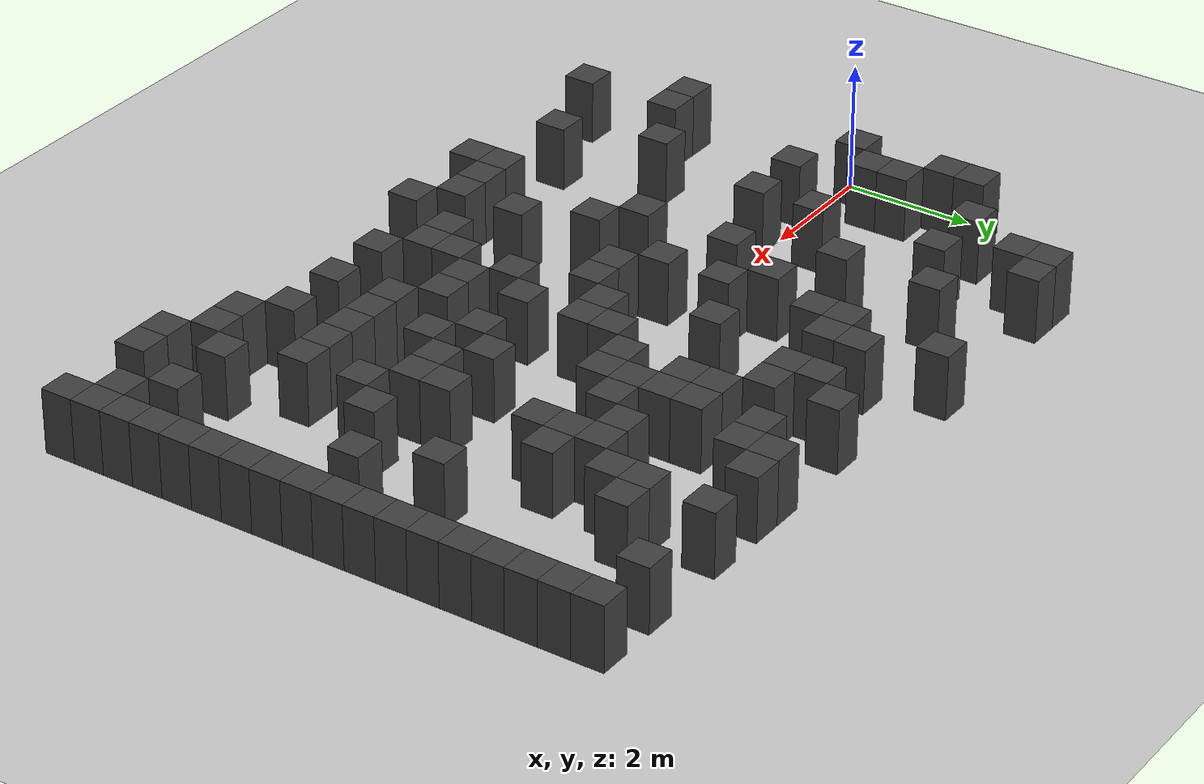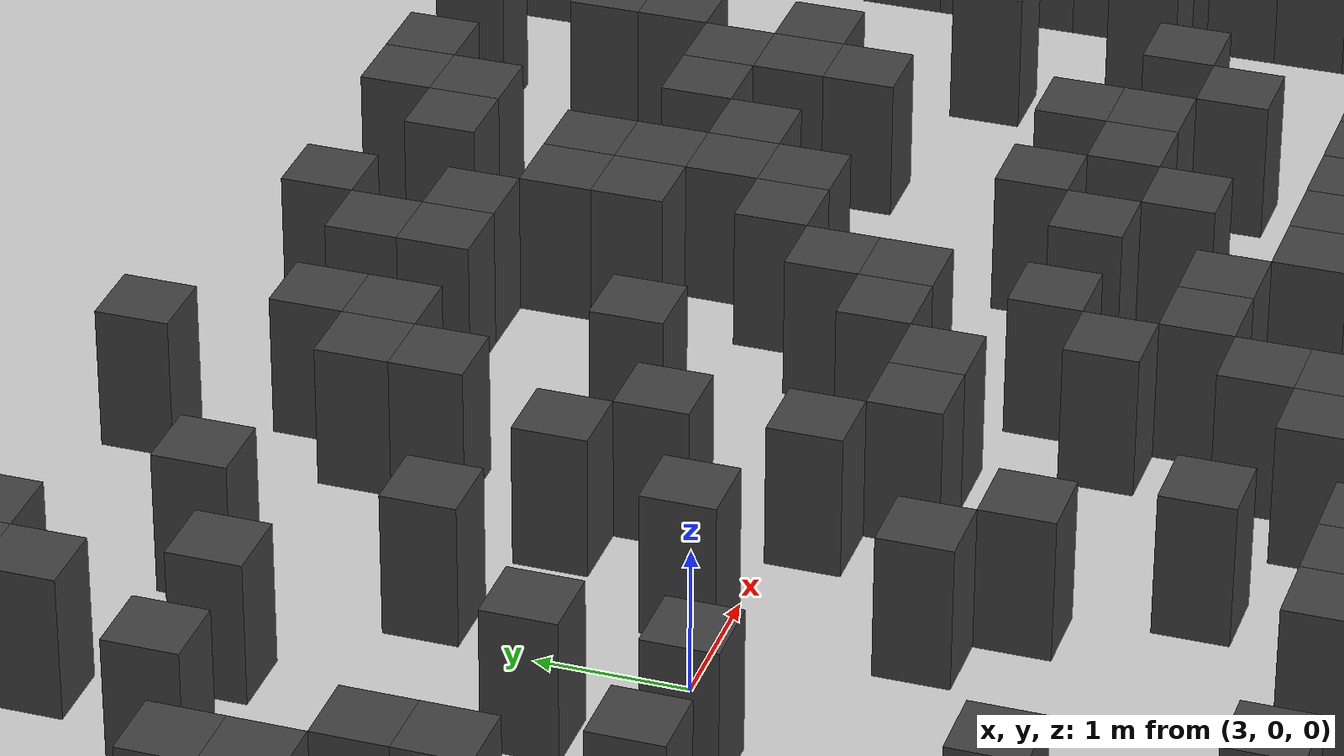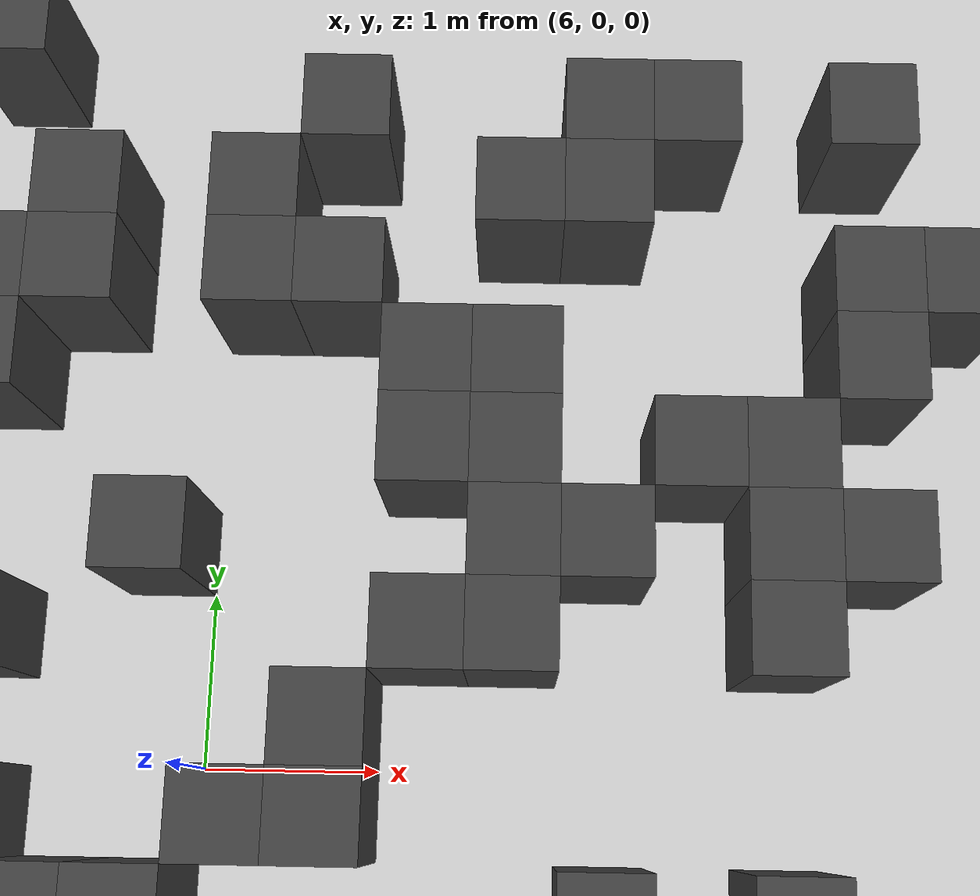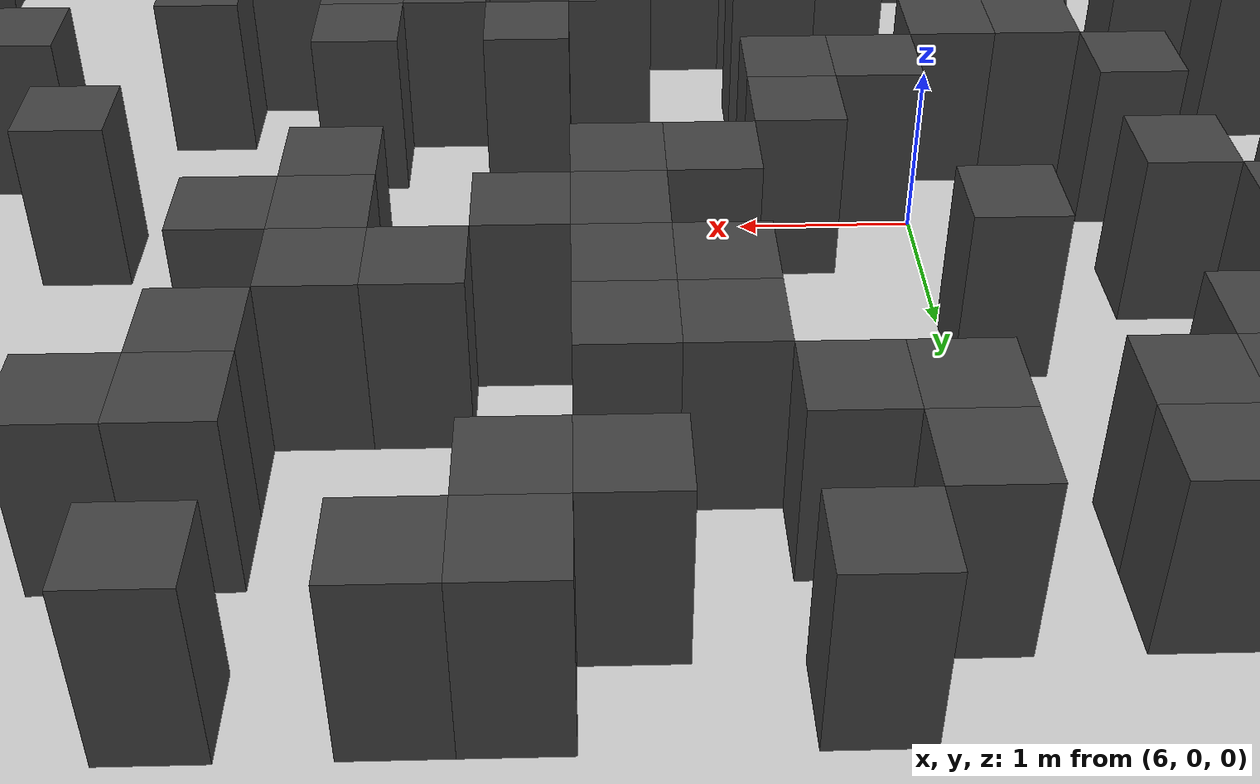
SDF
<sdf version="1.7">
 <world name="map_4682">
  <model name="ground_plane">
   <static>true</static>
   <link name="link">
    <collision name="collision">
     <geometry><plane><normal>0 0 1</normal><size>200 200</size></plane></geometry>
    </collision>
    <visual name="visual">
     <geometry><plane><normal>0 0 1</normal><size>200 200</size></plane></geometry>
     <material><ambient>0.8 0.8 0.8 1</ambient><diffuse>0.8 0.8 0.8 1</diffuse></material>
    </visual>
   </link>
  </model>
  <model name="maze_environment">
   <static>true</static>
   <link name="wall_241">
    <pose>1.750 4.250 0.500 0 0 0</pose>
    <collision name="col"><geometry><box><size>0.5 0.5 1.0</size></box></geometry></collision>
    <visual name="vis">
     <geometry><box><size>0.5 0.5 1.0</size></box></geometry>
     <material><ambient>0.15 0.15 0.15 1</ambient><diffuse>0.25 0.25 0.25 1</diffuse></material>
    </visual>
   </link>
   <link name="wall_242">
    <pose>2.250 4.250 0.500 0 0 0</pose>
    <collision name="col"><geometry><box><size>0.5 0.5 1.0</size></box></geometry></collision>
    <visual name="vis">
     <geometry><box><size>0.5 0.5 1.0</size></box></geometry>
     <material><ambient>0.15 0.15 0.15 1</ambient><diffuse>0.25 0.25 0.25 1</diffuse></material>
    </visual>
   </link>
   <link name="wall_243">
    <pose>4.750 4.250 0.500 0 0 0</pose>
    <collision name="col"><geometry><box><size>0.5 0.5 1.0</size></box></geometry></collision>
    <visual name="vis">
     <geometry><box><size>0.5 0.5 1.0</size></box></geometry>
     <material><ambient>0.15 0.15 0.15 1</ambient><diffuse>0.25 0.25 0.25 1</diffuse></material>
    </visual>
   </link>
   <link name="wall_257">
    <pose>1.750 3.750 0.500 0 0 0</pose>
    <collision name="col"><geometry><box><size>0.5 0.5 1.0</size></box></geometry></collision>
    <visual name="vis">
     <geometry><box><size>0.5 0.5 1.0</size></box></geometry>
     <material><ambient>0.15 0.15 0.15 1</ambient><diffuse>0.25 0.25 0.25 1</diffuse></material>
    </visual>
   </link>
   <link name="wall_258">
    <pose>6.750 3.750 0.500 0 0 0</pose>
    <collision name="col"><geometry><box><size>0.5 0.5 1.0</size></box></geometry></collision>
    <visual name="vis">
     <geometry><box><size>0.5 0.5 1.0</size></box></geometry>
     <material><ambient>0.15 0.15 0.15 1</ambient><diffuse>0.25 0.25 0.25 1</diffuse></material>
    </visual>
   </link>
   <link name="wall_259">
    <pose>8.250 3.750 0.500 0 0 0</pose>
    <collision name="col"><geometry><box><size>0.5 0.5 1.0</size></box></geometry></collision>
    <visual name="vis">
     <geometry><box><size>0.5 0.5 1.0</size></box></geometry>
     <material><ambient>0.15 0.15 0.15 1</ambient><diffuse>0.25 0.25 0.25 1</diffuse></material>
    </visual>
   </link>
   <link name="wall_260">
    <pose>8.750 3.750 0.500 0 0 0</pose>
    <collision name="col"><geometry><box><size>0.5 0.5 1.0</size></box></geometry></collision>
    <visual name="vis">
     <geometry><box><size>0.5 0.5 1.0</size></box></geometry>
     <material><ambient>0.15 0.15 0.15 1</ambient><diffuse>0.25 0.25 0.25 1</diffuse></material>
    </visual>
   </link>
   <link name="wall_261">
    <pose>9.750 3.750 0.500 0 0 0</pose>
    <collision name="col"><geometry><box><size>0.5 0.5 1.0</size></box></geometry></collision>
    <visual name="vis">
     <geometry><box><size>0.5 0.5 1.0</size></box></geometry>
     <material><ambient>0.15 0.15 0.15 1</ambient><diffuse>0.25 0.25 0.25 1</diffuse></material>
    </visual>
   </link>
   <link name="wall_262">
    <pose>11.250 3.750 0.500 0 0 0</pose>
    <collision name="col"><geometry><box><size>0.5 0.5 1.0</size></box></geometry></collision>
    <visual name="vis">
     <geometry><box><size>0.5 0.5 1.0</size></box></geometry>
     <material><ambient>0.15 0.15 0.15 1</ambient><diffuse>0.25 0.25 0.25 1</diffuse></material>
    </visual>
   </link>
   <link name="wall_263">
    <pose>12.250 3.750 0.500 0 0 0</pose>
    <collision name="col"><geometry><box><size>0.5 0.5 1.0</size></box></geometry></collision>
    <visual name="vis">
     <geometry><box><size>0.5 0.5 1.0</size></box></geometry>
     <material><ambient>0.15 0.15 0.15 1</ambient><diffuse>0.25 0.25 0.25 1</diffuse></material>
    </visual>
   </link>
   <link name="wall_273">
    <pose>3.250 3.250 0.500 0 0 0</pose>
    <collision name="col"><geometry><box><size>0.5 0.5 1.0</size></box></geometry></collision>
    <visual name="vis">
     <geometry><box><size>0.5 0.5 1.0</size></box></geometry>
     <material><ambient>0.15 0.15 0.15 1</ambient><diffuse>0.25 0.25 0.25 1</diffuse></material>
    </visual>
   </link>
   <link name="wall_274">
    <pose>5.250 3.250 0.500 0 0 0</pose>
    <collision name="col"><geometry><box><size>0.5 0.5 1.0</size></box></geometry></collision>
    <visual name="vis">
     <geometry><box><size>0.5 0.5 1.0</size></box></geometry>
     <material><ambient>0.15 0.15 0.15 1</ambient><diffuse>0.25 0.25 0.25 1</diffuse></material>
    </visual>
   </link>
   <link name="wall_275">
    <pose>6.250 3.250 0.500 0 0 0</pose>
    <collision name="col"><geometry><box><size>0.5 0.5 1.0</size></box></geometry></collision>
    <visual name="vis">
     <geometry><box><size>0.5 0.5 1.0</size></box></geometry>
     <material><ambient>0.15 0.15 0.15 1</ambient><diffuse>0.25 0.25 0.25 1</diffuse></material>
    </visual>
   </link>
   <link name="wall_276">
    <pose>7.750 3.250 0.500 0 0 0</pose>
    <collision name="col"><geometry><box><size>0.5 0.5 1.0</size></box></geometry></collision>
    <visual name="vis">
     <geometry><box><size>0.5 0.5 1.0</size></box></geometry>
     <material><ambient>0.15 0.15 0.15 1</ambient><diffuse>0.25 0.25 0.25 1</diffuse></material>
    </visual>
   </link>
   <link name="wall_277">
    <pose>8.250 3.250 0.500 0 0 0</pose>
    <collision name="col"><geometry><box><size>0.5 0.5 1.0</size></box></geometry></collision>
    <visual name="vis">
     <geometry><box><size>0.5 0.5 1.0</size></box></geometry>
     <material><ambient>0.15 0.15 0.15 1</ambient><diffuse>0.25 0.25 0.25 1</diffuse></material>
    </visual>
   </link>
   <link name="wall_278">
    <pose>12.250 3.250 0.500 0 0 0</pose>
    <collision name="col"><geometry><box><size>0.5 0.5 1.0</size></box></geometry></collision>
    <visual name="vis">
     <geometry><box><size>0.5 0.5 1.0</size></box></geometry>
     <material><ambient>0.15 0.15 0.15 1</ambient><diffuse>0.25 0.25 0.25 1</diffuse></material>
    </visual>
   </link>
   <link name="wall_285">
    <pose>1.250 2.750 0.500 0 0 0</pose>
    <collision name="col"><geometry><box><size>0.5 0.5 1.0</size></box></geometry></collision>
    <visual name="vis">
     <geometry><box><size>0.5 0.5 1.0</size></box></geometry>
     <material><ambient>0.15 0.15 0.15 1</ambient><diffuse>0.25 0.25 0.25 1</diffuse></material>
    </visual>
   </link>
   <link name="wall_286">
    <pose>2.250 2.750 0.500 0 0 0</pose>
    <collision name="col"><geometry><box><size>0.5 0.5 1.0</size></box></geometry></collision>
    <visual name="vis">
     <geometry><box><size>0.5 0.5 1.0</size></box></geometry>
     <material><ambient>0.15 0.15 0.15 1</ambient><diffuse>0.25 0.25 0.25 1</diffuse></material>
    </visual>
   </link>
   <link name="wall_287">
    <pose>4.750 2.750 0.500 0 0 0</pose>
    <collision name="col"><geometry><box><size>0.5 0.5 1.0</size></box></geometry></collision>
    <visual name="vis">
     <geometry><box><size>0.5 0.5 1.0</size></box></geometry>
     <material><ambient>0.15 0.15 0.15 1</ambient><diffuse>0.25 0.25 0.25 1</diffuse></material>
    </visual>
   </link>
   <link name="wall_288">
    <pose>5.250 2.750 0.500 0 0 0</pose>
    <collision name="col"><geometry><box><size>0.5 0.5 1.0</size></box></geometry></collision>
    <visual name="vis">
     <geometry><box><size>0.5 0.5 1.0</size></box></geometry>
     <material><ambient>0.15 0.15 0.15 1</ambient><diffuse>0.25 0.25 0.25 1</diffuse></material>
    </visual>
   </link>
   <link name="wall_289">
    <pose>6.250 2.750 0.500 0 0 0</pose>
    <collision name="col"><geometry><box><size>0.5 0.5 1.0</size></box></geometry></collision>
    <visual name="vis">
     <geometry><box><size>0.5 0.5 1.0</size></box></geometry>
     <material><ambient>0.15 0.15 0.15 1</ambient><diffuse>0.25 0.25 0.25 1</diffuse></material>
    </visual>
   </link>
   <link name="wall_290">
    <pose>6.750 2.750 0.500 0 0 0</pose>
    <collision name="col"><geometry><box><size>0.5 0.5 1.0</size></box></geometry></collision>
    <visual name="vis">
     <geometry><box><size>0.5 0.5 1.0</size></box></geometry>
     <material><ambient>0.15 0.15 0.15 1</ambient><diffuse>0.25 0.25 0.25 1</diffuse></material>
    </visual>
   </link>
   <link name="wall_291">
    <pose>9.750 2.750 0.500 0 0 0</pose>
    <collision name="col"><geometry><box><size>0.5 0.5 1.0</size></box></geometry></collision>
    <visual name="vis">
     <geometry><box><size>0.5 0.5 1.0</size></box></geometry>
     <material><ambient>0.15 0.15 0.15 1</ambient><diffuse>0.25 0.25 0.25 1</diffuse></material>
    </visual>
   </link>
   <link name="wall_292">
    <pose>10.250 2.750 0.500 0 0 0</pose>
    <collision name="col"><geometry><box><size>0.5 0.5 1.0</size></box></geometry></collision>
    <visual name="vis">
     <geometry><box><size>0.5 0.5 1.0</size></box></geometry>
     <material><ambient>0.15 0.15 0.15 1</ambient><diffuse>0.25 0.25 0.25 1</diffuse></material>
    </visual>
   </link>
   <link name="wall_293">
    <pose>12.250 2.750 0.500 0 0 0</pose>
    <collision name="col"><geometry><box><size>0.5 0.5 1.0</size></box></geometry></collision>
    <visual name="vis">
     <geometry><box><size>0.5 0.5 1.0</size></box></geometry>
     <material><ambient>0.15 0.15 0.15 1</ambient><diffuse>0.25 0.25 0.25 1</diffuse></material>
    </visual>
   </link>
   <link name="wall_302">
    <pose>0.250 2.250 0.500 0 0 0</pose>
    <collision name="col"><geometry><box><size>0.5 0.5 1.0</size></box></geometry></collision>
    <visual name="vis">
     <geometry><box><size>0.5 0.5 1.0</size></box></geometry>
     <material><ambient>0.15 0.15 0.15 1</ambient><diffuse>0.25 0.25 0.25 1</diffuse></material>
    </visual>
   </link>
   <link name="wall_303">
    <pose>4.750 2.250 0.500 0 0 0</pose>
    <collision name="col"><geometry><box><size>0.5 0.5 1.0</size></box></geometry></collision>
    <visual name="vis">
     <geometry><box><size>0.5 0.5 1.0</size></box></geometry>
     <material><ambient>0.15 0.15 0.15 1</ambient><diffuse>0.25 0.25 0.25 1</diffuse></material>
    </visual>
   </link>
   <link name="wall_304">
    <pose>7.250 2.250 0.500 0 0 0</pose>
    <collision name="col"><geometry><box><size>0.5 0.5 1.0</size></box></geometry></collision>
    <visual name="vis">
     <geometry><box><size>0.5 0.5 1.0</size></box></geometry>
     <material><ambient>0.15 0.15 0.15 1</ambient><diffuse>0.25 0.25 0.25 1</diffuse></material>
    </visual>
   </link>
   <link name="wall_305">
    <pose>7.750 2.250 0.500 0 0 0</pose>
    <collision name="col"><geometry><box><size>0.5 0.5 1.0</size></box></geometry></collision>
    <visual name="vis">
     <geometry><box><size>0.5 0.5 1.0</size></box></geometry>
     <material><ambient>0.15 0.15 0.15 1</ambient><diffuse>0.25 0.25 0.25 1</diffuse></material>
    </visual>
   </link>
   <link name="wall_306">
    <pose>9.750 2.250 0.500 0 0 0</pose>
    <collision name="col"><geometry><box><size>0.5 0.5 1.0</size></box></geometry></collision>
    <visual name="vis">
     <geometry><box><size>0.5 0.5 1.0</size></box></geometry>
     <material><ambient>0.15 0.15 0.15 1</ambient><diffuse>0.25 0.25 0.25 1</diffuse></material>
    </visual>
   </link>
   <link name="wall_307">
    <pose>12.250 2.250 0.500 0 0 0</pose>
    <collision name="col"><geometry><box><size>0.5 0.5 1.0</size></box></geometry></collision>
    <visual name="vis">
     <geometry><box><size>0.5 0.5 1.0</size></box></geometry>
     <material><ambient>0.15 0.15 0.15 1</ambient><diffuse>0.25 0.25 0.25 1</diffuse></material>
    </visual>
   </link>
   <link name="wall_318">
    <pose>0.250 1.750 0.500 0 0 0</pose>
    <collision name="col"><geometry><box><size>0.5 0.5 1.0</size></box></geometry></collision>
    <visual name="vis">
     <geometry><box><size>0.5 0.5 1.0</size></box></geometry>
     <material><ambient>0.15 0.15 0.15 1</ambient><diffuse>0.25 0.25 0.25 1</diffuse></material>
    </visual>
   </link>
   <link name="wall_319">
    <pose>3.250 1.750 0.500 0 0 0</pose>
    <collision name="col"><geometry><box><size>0.5 0.5 1.0</size></box></geometry></collision>
    <visual name="vis">
     <geometry><box><size>0.5 0.5 1.0</size></box></geometry>
     <material><ambient>0.15 0.15 0.15 1</ambient><diffuse>0.25 0.25 0.25 1</diffuse></material>
    </visual>
   </link>
   <link name="wall_320">
    <pose>7.250 1.750 0.500 0 0 0</pose>
    <collision name="col"><geometry><box><size>0.5 0.5 1.0</size></box></geometry></collision>
    <visual name="vis">
     <geometry><box><size>0.5 0.5 1.0</size></box></geometry>
     <material><ambient>0.15 0.15 0.15 1</ambient><diffuse>0.25 0.25 0.25 1</diffuse></material>
    </visual>
   </link>
   <link name="wall_321">
    <pose>7.750 1.750 0.500 0 0 0</pose>
    <collision name="col"><geometry><box><size>0.5 0.5 1.0</size></box></geometry></collision>
    <visual name="vis">
     <geometry><box><size>0.5 0.5 1.0</size></box></geometry>
     <material><ambient>0.15 0.15 0.15 1</ambient><diffuse>0.25 0.25 0.25 1</diffuse></material>
    </visual>
   </link>
   <link name="wall_322">
    <pose>8.750 1.750 0.500 0 0 0</pose>
    <collision name="col"><geometry><box><size>0.5 0.5 1.0</size></box></geometry></collision>
    <visual name="vis">
     <geometry><box><size>0.5 0.5 1.0</size></box></geometry>
     <material><ambient>0.15 0.15 0.15 1</ambient><diffuse>0.25 0.25 0.25 1</diffuse></material>
    </visual>
   </link>
   <link name="wall_323">
    <pose>9.250 1.750 0.500 0 0 0</pose>
    <collision name="col"><geometry><box><size>0.5 0.5 1.0</size></box></geometry></collision>
    <visual name="vis">
     <geometry><box><size>0.5 0.5 1.0</size></box></geometry>
     <material><ambient>0.15 0.15 0.15 1</ambient><diffuse>0.25 0.25 0.25 1</diffuse></material>
    </visual>
   </link>
   <link name="wall_324">
    <pose>12.250 1.750 0.500 0 0 0</pose>
    <collision name="col"><geometry><box><size>0.5 0.5 1.0</size></box></geometry></collision>
    <visual name="vis">
     <geometry><box><size>0.5 0.5 1.0</size></box></geometry>
     <material><ambient>0.15 0.15 0.15 1</ambient><diffuse>0.25 0.25 0.25 1</diffuse></material>
    </visual>
   </link>
   <link name="wall_330">
    <pose>0.750 1.250 0.500 0 0 0</pose>
    <collision name="col"><geometry><box><size>0.5 0.5 1.0</size></box></geometry></collision>
    <visual name="vis">
     <geometry><box><size>0.5 0.5 1.0</size></box></geometry>
     <material><ambient>0.15 0.15 0.15 1</ambient><diffuse>0.25 0.25 0.25 1</diffuse></material>
    </visual>
   </link>
   <link name="wall_331">
    <pose>4.250 1.250 0.500 0 0 0</pose>
    <collision name="col"><geometry><box><size>0.5 0.5 1.0</size></box></geometry></collision>
    <visual name="vis">
     <geometry><box><size>0.5 0.5 1.0</size></box></geometry>
     <material><ambient>0.15 0.15 0.15 1</ambient><diffuse>0.25 0.25 0.25 1</diffuse></material>
    </visual>
   </link>
   <link name="wall_332">
    <pose>5.750 1.250 0.500 0 0 0</pose>
    <collision name="col"><geometry><box><size>0.5 0.5 1.0</size></box></geometry></collision>
    <visual name="vis">
     <geometry><box><size>0.5 0.5 1.0</size></box></geometry>
     <material><ambient>0.15 0.15 0.15 1</ambient><diffuse>0.25 0.25 0.25 1</diffuse></material>
    </visual>
   </link>
   <link name="wall_333">
    <pose>7.750 1.250 0.500 0 0 0</pose>
    <collision name="col"><geometry><box><size>0.5 0.5 1.0</size></box></geometry></collision>
    <visual name="vis">
     <geometry><box><size>0.5 0.5 1.0</size></box></geometry>
     <material><ambient>0.15 0.15 0.15 1</ambient><diffuse>0.25 0.25 0.25 1</diffuse></material>
    </visual>
   </link>
   <link name="wall_334">
    <pose>8.250 1.250 0.500 0 0 0</pose>
    <collision name="col"><geometry><box><size>0.5 0.5 1.0</size></box></geometry></collision>
    <visual name="vis">
     <geometry><box><size>0.5 0.5 1.0</size></box></geometry>
     <material><ambient>0.15 0.15 0.15 1</ambient><diffuse>0.25 0.25 0.25 1</diffuse></material>
    </visual>
   </link>
   <link name="wall_335">
    <pose>9.250 1.250 0.500 0 0 0</pose>
    <collision name="col"><geometry><box><size>0.5 0.5 1.0</size></box></geometry></collision>
    <visual name="vis">
     <geometry><box><size>0.5 0.5 1.0</size></box></geometry>
     <material><ambient>0.15 0.15 0.15 1</ambient><diffuse>0.25 0.25 0.25 1</diffuse></material>
    </visual>
   </link>
   <link name="wall_336">
    <pose>9.750 1.250 0.500 0 0 0</pose>
    <collision name="col"><geometry><box><size>0.5 0.5 1.0</size></box></geometry></collision>
    <visual name="vis">
     <geometry><box><size>0.5 0.5 1.0</size></box></geometry>
     <material><ambient>0.15 0.15 0.15 1</ambient><diffuse>0.25 0.25 0.25 1</diffuse></material>
    </visual>
   </link>
   <link name="wall_337">
    <pose>12.250 1.250 0.500 0 0 0</pose>
    <collision name="col"><geometry><box><size>0.5 0.5 1.0</size></box></geometry></collision>
    <visual name="vis">
     <geometry><box><size>0.5 0.5 1.0</size></box></geometry>
     <material><ambient>0.15 0.15 0.15 1</ambient><diffuse>0.25 0.25 0.25 1</diffuse></material>
    </visual>
   </link>
   <link name="wall_351">
    <pose>0.750 0.750 0.500 0 0 0</pose>
    <collision name="col"><geometry><box><size>0.5 0.5 1.0</size></box></geometry></collision>
    <visual name="vis">
     <geometry><box><size>0.5 0.5 1.0</size></box></geometry>
     <material><ambient>0.15 0.15 0.15 1</ambient><diffuse>0.25 0.25 0.25 1</diffuse></material>
    </visual>
   </link>
   <link name="wall_352">
    <pose>2.250 0.750 0.500 0 0 0</pose>
    <collision name="col"><geometry><box><size>0.5 0.5 1.0</size></box></geometry></collision>
    <visual name="vis">
     <geometry><box><size>0.5 0.5 1.0</size></box></geometry>
     <material><ambient>0.15 0.15 0.15 1</ambient><diffuse>0.25 0.25 0.25 1</diffuse></material>
    </visual>
   </link>
   <link name="wall_353">
    <pose>4.750 0.750 0.500 0 0 0</pose>
    <collision name="col"><geometry><box><size>0.5 0.5 1.0</size></box></geometry></collision>
    <visual name="vis">
     <geometry><box><size>0.5 0.5 1.0</size></box></geometry>
     <material><ambient>0.15 0.15 0.15 1</ambient><diffuse>0.25 0.25 0.25 1</diffuse></material>
    </visual>
   </link>
   <link name="wall_354">
    <pose>7.250 0.750 0.500 0 0 0</pose>
    <collision name="col"><geometry><box><size>0.5 0.5 1.0</size></box></geometry></collision>
    <visual name="vis">
     <geometry><box><size>0.5 0.5 1.0</size></box></geometry>
     <material><ambient>0.15 0.15 0.15 1</ambient><diffuse>0.25 0.25 0.25 1</diffuse></material>
    </visual>
   </link>
   <link name="wall_355">
    <pose>7.750 0.750 0.500 0 0 0</pose>
    <collision name="col"><geometry><box><size>0.5 0.5 1.0</size></box></geometry></collision>
    <visual name="vis">
     <geometry><box><size>0.5 0.5 1.0</size></box></geometry>
     <material><ambient>0.15 0.15 0.15 1</ambient><diffuse>0.25 0.25 0.25 1</diffuse></material>
    </visual>
   </link>
   <link name="wall_356">
    <pose>9.250 0.750 0.500 0 0 0</pose>
    <collision name="col"><geometry><box><size>0.5 0.5 1.0</size></box></geometry></collision>
    <visual name="vis">
     <geometry><box><size>0.5 0.5 1.0</size></box></geometry>
     <material><ambient>0.15 0.15 0.15 1</ambient><diffuse>0.25 0.25 0.25 1</diffuse></material>
    </visual>
   </link>
   <link name="wall_357">
    <pose>12.250 0.750 0.500 0 0 0</pose>
    <collision name="col"><geometry><box><size>0.5 0.5 1.0</size></box></geometry></collision>
    <visual name="vis">
     <geometry><box><size>0.5 0.5 1.0</size></box></geometry>
     <material><ambient>0.15 0.15 0.15 1</ambient><diffuse>0.25 0.25 0.25 1</diffuse></material>
    </visual>
   </link>
   <link name="wall_364">
    <pose>0.250 0.250 0.500 0 0 0</pose>
    <collision name="col"><geometry><box><size>0.5 0.5 1.0</size></box></geometry></collision>
    <visual name="vis">
     <geometry><box><size>0.5 0.5 1.0</size></box></geometry>
     <material><ambient>0.15 0.15 0.15 1</ambient><diffuse>0.25 0.25 0.25 1</diffuse></material>
    </visual>
   </link>
   <link name="wall_365">
    <pose>3.750 0.250 0.500 0 0 0</pose>
    <collision name="col"><geometry><box><size>0.5 0.5 1.0</size></box></geometry></collision>
    <visual name="vis">
     <geometry><box><size>0.5 0.5 1.0</size></box></geometry>
     <material><ambient>0.15 0.15 0.15 1</ambient><diffuse>0.25 0.25 0.25 1</diffuse></material>
    </visual>
   </link>
   <link name="wall_366">
    <pose>6.750 0.250 0.500 0 0 0</pose>
    <collision name="col"><geometry><box><size>0.5 0.5 1.0</size></box></geometry></collision>
    <visual name="vis">
     <geometry><box><size>0.5 0.5 1.0</size></box></geometry>
     <material><ambient>0.15 0.15 0.15 1</ambient><diffuse>0.25 0.25 0.25 1</diffuse></material>
    </visual>
   </link>
   <link name="wall_367">
    <pose>10.750 0.250 0.500 0 0 0</pose>
    <collision name="col"><geometry><box><size>0.5 0.5 1.0</size></box></geometry></collision>
    <visual name="vis">
     <geometry><box><size>0.5 0.5 1.0</size></box></geometry>
     <material><ambient>0.15 0.15 0.15 1</ambient><diffuse>0.25 0.25 0.25 1</diffuse></material>
    </visual>
   </link>
   <link name="wall_368">
    <pose>12.250 0.250 0.500 0 0 0</pose>
    <collision name="col"><geometry><box><size>0.5 0.5 1.0</size></box></geometry></collision>
    <visual name="vis">
     <geometry><box><size>0.5 0.5 1.0</size></box></geometry>
     <material><ambient>0.15 0.15 0.15 1</ambient><diffuse>0.25 0.25 0.25 1</diffuse></material>
    </visual>
   </link>
   <link name="wall_373">
    <pose>1.250 -0.250 0.500 0 0 0</pose>
    <collision name="col"><geometry><box><size>0.5 0.5 1.0</size></box></geometry></collision>
    <visual name="vis">
     <geometry><box><size>0.5 0.5 1.0</size></box></geometry>
     <material><ambient>0.15 0.15 0.15 1</ambient><diffuse>0.25 0.25 0.25 1</diffuse></material>
    </visual>
   </link>
   <link name="wall_374">
    <pose>2.250 -0.250 0.500 0 0 0</pose>
    <collision name="col"><geometry><box><size>0.5 0.5 1.0</size></box></geometry></collision>
    <visual name="vis">
     <geometry><box><size>0.5 0.5 1.0</size></box></geometry>
     <material><ambient>0.15 0.15 0.15 1</ambient><diffuse>0.25 0.25 0.25 1</diffuse></material>
    </visual>
   </link>
   <link name="wall_375">
    <pose>4.750 -0.250 0.500 0 0 0</pose>
    <collision name="col"><geometry><box><size>0.5 0.5 1.0</size></box></geometry></collision>
    <visual name="vis">
     <geometry><box><size>0.5 0.5 1.0</size></box></geometry>
     <material><ambient>0.15 0.15 0.15 1</ambient><diffuse>0.25 0.25 0.25 1</diffuse></material>
    </visual>
   </link>
   <link name="wall_376">
    <pose>6.250 -0.250 0.500 0 0 0</pose>
    <collision name="col"><geometry><box><size>0.5 0.5 1.0</size></box></geometry></collision>
    <visual name="vis">
     <geometry><box><size>0.5 0.5 1.0</size></box></geometry>
     <material><ambient>0.15 0.15 0.15 1</ambient><diffuse>0.25 0.25 0.25 1</diffuse></material>
    </visual>
   </link>
   <link name="wall_377">
    <pose>6.750 -0.250 0.500 0 0 0</pose>
    <collision name="col"><geometry><box><size>0.5 0.5 1.0</size></box></geometry></collision>
    <visual name="vis">
     <geometry><box><size>0.5 0.5 1.0</size></box></geometry>
     <material><ambient>0.15 0.15 0.15 1</ambient><diffuse>0.25 0.25 0.25 1</diffuse></material>
    </visual>
   </link>
   <link name="wall_378">
    <pose>12.250 -0.250 0.500 0 0 0</pose>
    <collision name="col"><geometry><box><size>0.5 0.5 1.0</size></box></geometry></collision>
    <visual name="vis">
     <geometry><box><size>0.5 0.5 1.0</size></box></geometry>
     <material><ambient>0.15 0.15 0.15 1</ambient><diffuse>0.25 0.25 0.25 1</diffuse></material>
    </visual>
   </link>
   <link name="wall_382">
    <pose>5.250 -0.750 0.500 0 0 0</pose>
    <collision name="col"><geometry><box><size>0.5 0.5 1.0</size></box></geometry></collision>
    <visual name="vis">
     <geometry><box><size>0.5 0.5 1.0</size></box></geometry>
     <material><ambient>0.15 0.15 0.15 1</ambient><diffuse>0.25 0.25 0.25 1</diffuse></material>
    </visual>
   </link>
   <link name="wall_383">
    <pose>5.750 -0.750 0.500 0 0 0</pose>
    <collision name="col"><geometry><box><size>0.5 0.5 1.0</size></box></geometry></collision>
    <visual name="vis">
     <geometry><box><size>0.5 0.5 1.0</size></box></geometry>
     <material><ambient>0.15 0.15 0.15 1</ambient><diffuse>0.25 0.25 0.25 1</diffuse></material>
    </visual>
   </link>
   <link name="wall_384">
    <pose>8.250 -0.750 0.500 0 0 0</pose>
    <collision name="col"><geometry><box><size>0.5 0.5 1.0</size></box></geometry></collision>
    <visual name="vis">
     <geometry><box><size>0.5 0.5 1.0</size></box></geometry>
     <material><ambient>0.15 0.15 0.15 1</ambient><diffuse>0.25 0.25 0.25 1</diffuse></material>
    </visual>
   </link>
   <link name="wall_385">
    <pose>9.250 -0.750 0.500 0 0 0</pose>
    <collision name="col"><geometry><box><size>0.5 0.5 1.0</size></box></geometry></collision>
    <visual name="vis">
     <geometry><box><size>0.5 0.5 1.0</size></box></geometry>
     <material><ambient>0.15 0.15 0.15 1</ambient><diffuse>0.25 0.25 0.25 1</diffuse></material>
    </visual>
   </link>
   <link name="wall_386">
    <pose>11.250 -0.750 0.500 0 0 0</pose>
    <collision name="col"><geometry><box><size>0.5 0.5 1.0</size></box></geometry></collision>
    <visual name="vis">
     <geometry><box><size>0.5 0.5 1.0</size></box></geometry>
     <material><ambient>0.15 0.15 0.15 1</ambient><diffuse>0.25 0.25 0.25 1</diffuse></material>
    </visual>
   </link>
   <link name="wall_387">
    <pose>12.250 -0.750 0.500 0 0 0</pose>
    <collision name="col"><geometry><box><size>0.5 0.5 1.0</size></box></geometry></collision>
    <visual name="vis">
     <geometry><box><size>0.5 0.5 1.0</size></box></geometry>
     <material><ambient>0.15 0.15 0.15 1</ambient><diffuse>0.25 0.25 0.25 1</diffuse></material>
    </visual>
   </link>
   <link name="wall_394">
    <pose>3.750 -1.250 0.500 0 0 0</pose>
    <collision name="col"><geometry><box><size>0.5 0.5 1.0</size></box></geometry></collision>
    <visual name="vis">
     <geometry><box><size>0.5 0.5 1.0</size></box></geometry>
     <material><ambient>0.15 0.15 0.15 1</ambient><diffuse>0.25 0.25 0.25 1</diffuse></material>
    </visual>
   </link>
   <link name="wall_395">
    <pose>6.750 -1.250 0.500 0 0 0</pose>
    <collision name="col"><geometry><box><size>0.5 0.5 1.0</size></box></geometry></collision>
    <visual name="vis">
     <geometry><box><size>0.5 0.5 1.0</size></box></geometry>
     <material><ambient>0.15 0.15 0.15 1</ambient><diffuse>0.25 0.25 0.25 1</diffuse></material>
    </visual>
   </link>
   <link name="wall_396">
    <pose>7.750 -1.250 0.500 0 0 0</pose>
    <collision name="col"><geometry><box><size>0.5 0.5 1.0</size></box></geometry></collision>
    <visual name="vis">
     <geometry><box><size>0.5 0.5 1.0</size></box></geometry>
     <material><ambient>0.15 0.15 0.15 1</ambient><diffuse>0.25 0.25 0.25 1</diffuse></material>
    </visual>
   </link>
   <link name="wall_397">
    <pose>8.750 -1.250 0.500 0 0 0</pose>
    <collision name="col"><geometry><box><size>0.5 0.5 1.0</size></box></geometry></collision>
    <visual name="vis">
     <geometry><box><size>0.5 0.5 1.0</size></box></geometry>
     <material><ambient>0.15 0.15 0.15 1</ambient><diffuse>0.25 0.25 0.25 1</diffuse></material>
    </visual>
   </link>
   <link name="wall_398">
    <pose>9.250 -1.250 0.500 0 0 0</pose>
    <collision name="col"><geometry><box><size>0.5 0.5 1.0</size></box></geometry></collision>
    <visual name="vis">
     <geometry><box><size>0.5 0.5 1.0</size></box></geometry>
     <material><ambient>0.15 0.15 0.15 1</ambient><diffuse>0.25 0.25 0.25 1</diffuse></material>
    </visual>
   </link>
   <link name="wall_399">
    <pose>10.250 -1.250 0.500 0 0 0</pose>
    <collision name="col"><geometry><box><size>0.5 0.5 1.0</size></box></geometry></collision>
    <visual name="vis">
     <geometry><box><size>0.5 0.5 1.0</size></box></geometry>
     <material><ambient>0.15 0.15 0.15 1</ambient><diffuse>0.25 0.25 0.25 1</diffuse></material>
    </visual>
   </link>
   <link name="wall_400">
    <pose>12.250 -1.250 0.500 0 0 0</pose>
    <collision name="col"><geometry><box><size>0.5 0.5 1.0</size></box></geometry></collision>
    <visual name="vis">
     <geometry><box><size>0.5 0.5 1.0</size></box></geometry>
     <material><ambient>0.15 0.15 0.15 1</ambient><diffuse>0.25 0.25 0.25 1</diffuse></material>
    </visual>
   </link>
   <link name="wall_408">
    <pose>4.250 -1.750 0.500 0 0 0</pose>
    <collision name="col"><geometry><box><size>0.5 0.5 1.0</size></box></geometry></collision>
    <visual name="vis">
     <geometry><box><size>0.5 0.5 1.0</size></box></geometry>
     <material><ambient>0.15 0.15 0.15 1</ambient><diffuse>0.25 0.25 0.25 1</diffuse></material>
    </visual>
   </link>
   <link name="wall_409">
    <pose>6.250 -1.750 0.500 0 0 0</pose>
    <collision name="col"><geometry><box><size>0.5 0.5 1.0</size></box></geometry></collision>
    <visual name="vis">
     <geometry><box><size>0.5 0.5 1.0</size></box></geometry>
     <material><ambient>0.15 0.15 0.15 1</ambient><diffuse>0.25 0.25 0.25 1</diffuse></material>
    </visual>
   </link>
   <link name="wall_410">
    <pose>8.250 -1.750 0.500 0 0 0</pose>
    <collision name="col"><geometry><box><size>0.5 0.5 1.0</size></box></geometry></collision>
    <visual name="vis">
     <geometry><box><size>0.5 0.5 1.0</size></box></geometry>
     <material><ambient>0.15 0.15 0.15 1</ambient><diffuse>0.25 0.25 0.25 1</diffuse></material>
    </visual>
   </link>
   <link name="wall_411">
    <pose>9.750 -1.750 0.500 0 0 0</pose>
    <collision name="col"><geometry><box><size>0.5 0.5 1.0</size></box></geometry></collision>
    <visual name="vis">
     <geometry><box><size>0.5 0.5 1.0</size></box></geometry>
     <material><ambient>0.15 0.15 0.15 1</ambient><diffuse>0.25 0.25 0.25 1</diffuse></material>
    </visual>
   </link>
   <link name="wall_412">
    <pose>12.250 -1.750 0.500 0 0 0</pose>
    <collision name="col"><geometry><box><size>0.5 0.5 1.0</size></box></geometry></collision>
    <visual name="vis">
     <geometry><box><size>0.5 0.5 1.0</size></box></geometry>
     <material><ambient>0.15 0.15 0.15 1</ambient><diffuse>0.25 0.25 0.25 1</diffuse></material>
    </visual>
   </link>
   <link name="wall_416">
    <pose>1.750 -2.250 0.500 0 0 0</pose>
    <collision name="col"><geometry><box><size>0.5 0.5 1.0</size></box></geometry></collision>
    <visual name="vis">
     <geometry><box><size>0.5 0.5 1.0</size></box></geometry>
     <material><ambient>0.15 0.15 0.15 1</ambient><diffuse>0.25 0.25 0.25 1</diffuse></material>
    </visual>
   </link>
   <link name="wall_417">
    <pose>6.750 -2.250 0.500 0 0 0</pose>
    <collision name="col"><geometry><box><size>0.5 0.5 1.0</size></box></geometry></collision>
    <visual name="vis">
     <geometry><box><size>0.5 0.5 1.0</size></box></geometry>
     <material><ambient>0.15 0.15 0.15 1</ambient><diffuse>0.25 0.25 0.25 1</diffuse></material>
    </visual>
   </link>
   <link name="wall_418">
    <pose>7.250 -2.250 0.500 0 0 0</pose>
    <collision name="col"><geometry><box><size>0.5 0.5 1.0</size></box></geometry></collision>
    <visual name="vis">
     <geometry><box><size>0.5 0.5 1.0</size></box></geometry>
     <material><ambient>0.15 0.15 0.15 1</ambient><diffuse>0.25 0.25 0.25 1</diffuse></material>
    </visual>
   </link>
   <link name="wall_419">
    <pose>12.250 -2.250 0.500 0 0 0</pose>
    <collision name="col"><geometry><box><size>0.5 0.5 1.0</size></box></geometry></collision>
    <visual name="vis">
     <geometry><box><size>0.5 0.5 1.0</size></box></geometry>
     <material><ambient>0.15 0.15 0.15 1</ambient><diffuse>0.25 0.25 0.25 1</diffuse></material>
    </visual>
   </link>
   <link name="wall_429">
    <pose>0.250 -2.750 0.500 0 0 0</pose>
    <collision name="col"><geometry><box><size>0.5 0.5 1.0</size></box></geometry></collision>
    <visual name="vis">
     <geometry><box><size>0.5 0.5 1.0</size></box></geometry>
     <material><ambient>0.15 0.15 0.15 1</ambient><diffuse>0.25 0.25 0.25 1</diffuse></material>
    </visual>
   </link>
   <link name="wall_430">
    <pose>0.750 -2.750 0.500 0 0 0</pose>
    <collision name="col"><geometry><box><size>0.5 0.5 1.0</size></box></geometry></collision>
    <visual name="vis">
     <geometry><box><size>0.5 0.5 1.0</size></box></geometry>
     <material><ambient>0.15 0.15 0.15 1</ambient><diffuse>0.25 0.25 0.25 1</diffuse></material>
    </visual>
   </link>
   <link name="wall_431">
    <pose>4.750 -2.750 0.500 0 0 0</pose>
    <collision name="col"><geometry><box><size>0.5 0.5 1.0</size></box></geometry></collision>
    <visual name="vis">
     <geometry><box><size>0.5 0.5 1.0</size></box></geometry>
     <material><ambient>0.15 0.15 0.15 1</ambient><diffuse>0.25 0.25 0.25 1</diffuse></material>
    </visual>
   </link>
   <link name="wall_432">
    <pose>6.250 -2.750 0.500 0 0 0</pose>
    <collision name="col"><geometry><box><size>0.5 0.5 1.0</size></box></geometry></collision>
    <visual name="vis">
     <geometry><box><size>0.5 0.5 1.0</size></box></geometry>
     <material><ambient>0.15 0.15 0.15 1</ambient><diffuse>0.25 0.25 0.25 1</diffuse></material>
    </visual>
   </link>
   <link name="wall_433">
    <pose>7.750 -2.750 0.500 0 0 0</pose>
    <collision name="col"><geometry><box><size>0.5 0.5 1.0</size></box></geometry></collision>
    <visual name="vis">
     <geometry><box><size>0.5 0.5 1.0</size></box></geometry>
     <material><ambient>0.15 0.15 0.15 1</ambient><diffuse>0.25 0.25 0.25 1</diffuse></material>
    </visual>
   </link>
   <link name="wall_434">
    <pose>8.250 -2.750 0.500 0 0 0</pose>
    <collision name="col"><geometry><box><size>0.5 0.5 1.0</size></box></geometry></collision>
    <visual name="vis">
     <geometry><box><size>0.5 0.5 1.0</size></box></geometry>
     <material><ambient>0.15 0.15 0.15 1</ambient><diffuse>0.25 0.25 0.25 1</diffuse></material>
    </visual>
   </link>
   <link name="wall_435">
    <pose>8.750 -2.750 0.500 0 0 0</pose>
    <collision name="col"><geometry><box><size>0.5 0.5 1.0</size></box></geometry></collision>
    <visual name="vis">
     <geometry><box><size>0.5 0.5 1.0</size></box></geometry>
     <material><ambient>0.15 0.15 0.15 1</ambient><diffuse>0.25 0.25 0.25 1</diffuse></material>
    </visual>
   </link>
   <link name="wall_436">
    <pose>9.250 -2.750 0.500 0 0 0</pose>
    <collision name="col"><geometry><box><size>0.5 0.5 1.0</size></box></geometry></collision>
    <visual name="vis">
     <geometry><box><size>0.5 0.5 1.0</size></box></geometry>
     <material><ambient>0.15 0.15 0.15 1</ambient><diffuse>0.25 0.25 0.25 1</diffuse></material>
    </visual>
   </link>
   <link name="wall_437">
    <pose>9.750 -2.750 0.500 0 0 0</pose>
    <collision name="col"><geometry><box><size>0.5 0.5 1.0</size></box></geometry></collision>
    <visual name="vis">
     <geometry><box><size>0.5 0.5 1.0</size></box></geometry>
     <material><ambient>0.15 0.15 0.15 1</ambient><diffuse>0.25 0.25 0.25 1</diffuse></material>
    </visual>
   </link>
   <link name="wall_438">
    <pose>12.250 -2.750 0.500 0 0 0</pose>
    <collision name="col"><geometry><box><size>0.5 0.5 1.0</size></box></geometry></collision>
    <visual name="vis">
     <geometry><box><size>0.5 0.5 1.0</size></box></geometry>
     <material><ambient>0.15 0.15 0.15 1</ambient><diffuse>0.25 0.25 0.25 1</diffuse></material>
    </visual>
   </link>
   <link name="wall_444">
    <pose>5.750 -3.250 0.500 0 0 0</pose>
    <collision name="col"><geometry><box><size>0.5 0.5 1.0</size></box></geometry></collision>
    <visual name="vis">
     <geometry><box><size>0.5 0.5 1.0</size></box></geometry>
     <material><ambient>0.15 0.15 0.15 1</ambient><diffuse>0.25 0.25 0.25 1</diffuse></material>
    </visual>
   </link>
   <link name="wall_445">
    <pose>6.250 -3.250 0.500 0 0 0</pose>
    <collision name="col"><geometry><box><size>0.5 0.5 1.0</size></box></geometry></collision>
    <visual name="vis">
     <geometry><box><size>0.5 0.5 1.0</size></box></geometry>
     <material><ambient>0.15 0.15 0.15 1</ambient><diffuse>0.25 0.25 0.25 1</diffuse></material>
    </visual>
   </link>
   <link name="wall_446">
    <pose>12.250 -3.250 0.500 0 0 0</pose>
    <collision name="col"><geometry><box><size>0.5 0.5 1.0</size></box></geometry></collision>
    <visual name="vis">
     <geometry><box><size>0.5 0.5 1.0</size></box></geometry>
     <material><ambient>0.15 0.15 0.15 1</ambient><diffuse>0.25 0.25 0.25 1</diffuse></material>
    </visual>
   </link>
   <link name="wall_457">
    <pose>2.250 -3.750 0.500 0 0 0</pose>
    <collision name="col"><geometry><box><size>0.5 0.5 1.0</size></box></geometry></collision>
    <visual name="vis">
     <geometry><box><size>0.5 0.5 1.0</size></box></geometry>
     <material><ambient>0.15 0.15 0.15 1</ambient><diffuse>0.25 0.25 0.25 1</diffuse></material>
    </visual>
   </link>
   <link name="wall_458">
    <pose>3.750 -3.750 0.500 0 0 0</pose>
    <collision name="col"><geometry><box><size>0.5 0.5 1.0</size></box></geometry></collision>
    <visual name="vis">
     <geometry><box><size>0.5 0.5 1.0</size></box></geometry>
     <material><ambient>0.15 0.15 0.15 1</ambient><diffuse>0.25 0.25 0.25 1</diffuse></material>
    </visual>
   </link>
   <link name="wall_459">
    <pose>4.250 -3.750 0.500 0 0 0</pose>
    <collision name="col"><geometry><box><size>0.5 0.5 1.0</size></box></geometry></collision>
    <visual name="vis">
     <geometry><box><size>0.5 0.5 1.0</size></box></geometry>
     <material><ambient>0.15 0.15 0.15 1</ambient><diffuse>0.25 0.25 0.25 1</diffuse></material>
    </visual>
   </link>
   <link name="wall_460">
    <pose>4.750 -3.750 0.500 0 0 0</pose>
    <collision name="col"><geometry><box><size>0.5 0.5 1.0</size></box></geometry></collision>
    <visual name="vis">
     <geometry><box><size>0.5 0.5 1.0</size></box></geometry>
     <material><ambient>0.15 0.15 0.15 1</ambient><diffuse>0.25 0.25 0.25 1</diffuse></material>
    </visual>
   </link>
   <link name="wall_461">
    <pose>6.750 -3.750 0.500 0 0 0</pose>
    <collision name="col"><geometry><box><size>0.5 0.5 1.0</size></box></geometry></collision>
    <visual name="vis">
     <geometry><box><size>0.5 0.5 1.0</size></box></geometry>
     <material><ambient>0.15 0.15 0.15 1</ambient><diffuse>0.25 0.25 0.25 1</diffuse></material>
    </visual>
   </link>
   <link name="wall_462">
    <pose>7.750 -3.750 0.500 0 0 0</pose>
    <collision name="col"><geometry><box><size>0.5 0.5 1.0</size></box></geometry></collision>
    <visual name="vis">
     <geometry><box><size>0.5 0.5 1.0</size></box></geometry>
     <material><ambient>0.15 0.15 0.15 1</ambient><diffuse>0.25 0.25 0.25 1</diffuse></material>
    </visual>
   </link>
   <link name="wall_463">
    <pose>8.750 -3.750 0.500 0 0 0</pose>
    <collision name="col"><geometry><box><size>0.5 0.5 1.0</size></box></geometry></collision>
    <visual name="vis">
     <geometry><box><size>0.5 0.5 1.0</size></box></geometry>
     <material><ambient>0.15 0.15 0.15 1</ambient><diffuse>0.25 0.25 0.25 1</diffuse></material>
    </visual>
   </link>
   <link name="wall_464">
    <pose>10.250 -3.750 0.500 0 0 0</pose>
    <collision name="col"><geometry><box><size>0.5 0.5 1.0</size></box></geometry></collision>
    <visual name="vis">
     <geometry><box><size>0.5 0.5 1.0</size></box></geometry>
     <material><ambient>0.15 0.15 0.15 1</ambient><diffuse>0.25 0.25 0.25 1</diffuse></material>
    </visual>
   </link>
   <link name="wall_465">
    <pose>11.250 -3.750 0.500 0 0 0</pose>
    <collision name="col"><geometry><box><size>0.5 0.5 1.0</size></box></geometry></collision>
    <visual name="vis">
     <geometry><box><size>0.5 0.5 1.0</size></box></geometry>
     <material><ambient>0.15 0.15 0.15 1</ambient><diffuse>0.25 0.25 0.25 1</diffuse></material>
    </visual>
   </link>
   <link name="wall_466">
    <pose>12.250 -3.750 0.500 0 0 0</pose>
    <collision name="col"><geometry><box><size>0.5 0.5 1.0</size></box></geometry></collision>
    <visual name="vis">
     <geometry><box><size>0.5 0.5 1.0</size></box></geometry>
     <material><ambient>0.15 0.15 0.15 1</ambient><diffuse>0.25 0.25 0.25 1</diffuse></material>
    </visual>
   </link>
   <link name="wall_472">
    <pose>0.750 -4.250 0.500 0 0 0</pose>
    <collision name="col"><geometry><box><size>0.5 0.5 1.0</size></box></geometry></collision>
    <visual name="vis">
     <geometry><box><size>0.5 0.5 1.0</size></box></geometry>
     <material><ambient>0.15 0.15 0.15 1</ambient><diffuse>0.25 0.25 0.25 1</diffuse></material>
    </visual>
   </link>
   <link name="wall_473">
    <pose>3.750 -4.250 0.500 0 0 0</pose>
    <collision name="col"><geometry><box><size>0.5 0.5 1.0</size></box></geometry></collision>
    <visual name="vis">
     <geometry><box><size>0.5 0.5 1.0</size></box></geometry>
     <material><ambient>0.15 0.15 0.15 1</ambient><diffuse>0.25 0.25 0.25 1</diffuse></material>
    </visual>
   </link>
   <link name="wall_474">
    <pose>5.250 -4.250 0.500 0 0 0</pose>
    <collision name="col"><geometry><box><size>0.5 0.5 1.0</size></box></geometry></collision>
    <visual name="vis">
     <geometry><box><size>0.5 0.5 1.0</size></box></geometry>
     <material><ambient>0.15 0.15 0.15 1</ambient><diffuse>0.25 0.25 0.25 1</diffuse></material>
    </visual>
   </link>
   <link name="wall_475">
    <pose>9.250 -4.250 0.500 0 0 0</pose>
    <collision name="col"><geometry><box><size>0.5 0.5 1.0</size></box></geometry></collision>
    <visual name="vis">
     <geometry><box><size>0.5 0.5 1.0</size></box></geometry>
     <material><ambient>0.15 0.15 0.15 1</ambient><diffuse>0.25 0.25 0.25 1</diffuse></material>
    </visual>
   </link>
   <link name="wall_476">
    <pose>9.750 -4.250 0.500 0 0 0</pose>
    <collision name="col"><geometry><box><size>0.5 0.5 1.0</size></box></geometry></collision>
    <visual name="vis">
     <geometry><box><size>0.5 0.5 1.0</size></box></geometry>
     <material><ambient>0.15 0.15 0.15 1</ambient><diffuse>0.25 0.25 0.25 1</diffuse></material>
    </visual>
   </link>
   <link name="wall_477">
    <pose>11.750 -4.250 0.500 0 0 0</pose>
    <collision name="col"><geometry><box><size>0.5 0.5 1.0</size></box></geometry></collision>
    <visual name="vis">
     <geometry><box><size>0.5 0.5 1.0</size></box></geometry>
     <material><ambient>0.15 0.15 0.15 1</ambient><diffuse>0.25 0.25 0.25 1</diffuse></material>
    </visual>
   </link>
   <link name="wall_478">
    <pose>12.250 -4.250 0.500 0 0 0</pose>
    <collision name="col"><geometry><box><size>0.5 0.5 1.0</size></box></geometry></collision>
    <visual name="vis">
     <geometry><box><size>0.5 0.5 1.0</size></box></geometry>
     <material><ambient>0.15 0.15 0.15 1</ambient><diffuse>0.25 0.25 0.25 1</diffuse></material>
    </visual>
   </link>
   <link name="wall_488">
    <pose>10.250 -4.750 0.500 0 0 0</pose>
    <collision name="col"><geometry><box><size>0.5 0.5 1.0</size></box></geometry></collision>
    <visual name="vis">
     <geometry><box><size>0.5 0.5 1.0</size></box></geometry>
     <material><ambient>0.15 0.15 0.15 1</ambient><diffuse>0.25 0.25 0.25 1</diffuse></material>
    </visual>
   </link>
   <link name="wall_489">
    <pose>10.750 -4.750 0.500 0 0 0</pose>
    <collision name="col"><geometry><box><size>0.5 0.5 1.0</size></box></geometry></collision>
    <visual name="vis">
     <geometry><box><size>0.5 0.5 1.0</size></box></geometry>
     <material><ambient>0.15 0.15 0.15 1</ambient><diffuse>0.25 0.25 0.25 1</diffuse></material>
    </visual>
   </link>
   <link name="wall_490">
    <pose>12.250 -4.750 0.500 0 0 0</pose>
    <collision name="col"><geometry><box><size>0.5 0.5 1.0</size></box></geometry></collision>
    <visual name="vis">
     <geometry><box><size>0.5 0.5 1.0</size></box></geometry>
     <material><ambient>0.15 0.15 0.15 1</ambient><diffuse>0.25 0.25 0.25 1</diffuse></material>
    </visual>
   </link>
  </model>
 </world>
</sdf>
